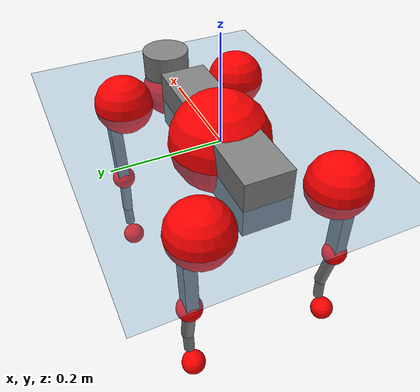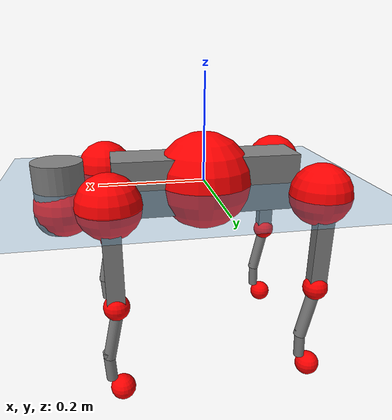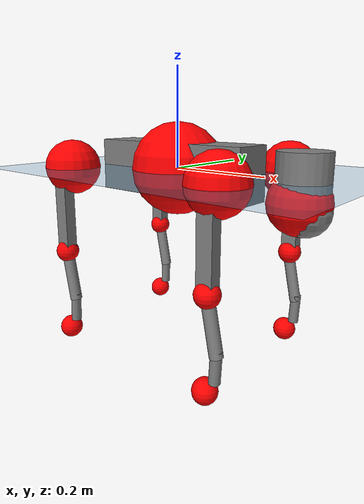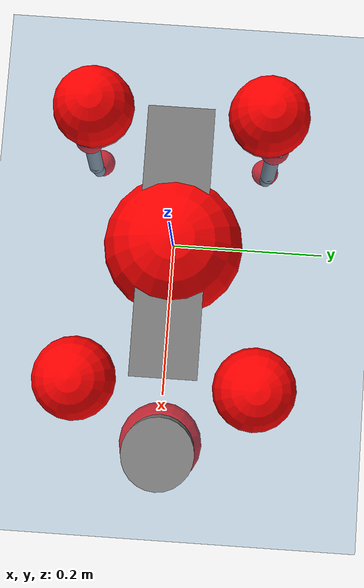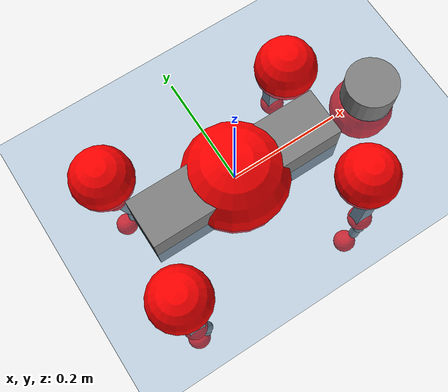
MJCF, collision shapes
<mujoco model="go2">
  <compiler angle="radian" assetdir="assets" balanceinertia="true" inertiafromgeom="false"/>

  <option timestep="0.005" density="1.2" viscosity="2e-05"/>

  <size nkey="1"/>

  <visual>
    <quality shadowsize="8192"/>
    <map shadowclip="0.5"/>
  </visual>

  <default>
    <default class="/">
      <geom contype="0" conaffinity="0" group="1" solref="-1000 -80"/>
      <site size="0.01 0.005 0.005" group="5"/>
      <general forcelimited="true" biastype="affine" gainprm="20" biasprm="0 -20 -0.5"/>
      <default class="go2">
        <joint armature="0.01" damping="0.01" frictionloss="0.2"/>
        <geom condim="1" margin="0.001"/>
        <default class="visual">
          <geom type="mesh" group="2"/>
        </default>
        <default class="collision">
          <geom group="3"/>
          <default class="foot">
            <geom size="0.022 0 0" condim="6" priority="1" friction="0.8 0.02 0.01" solimp="0.015 1 0.022"/>
          </default>
        </default>
        <default class="reward_collision_sphere">
          <geom group="5" rgba="1 0 0 1"/>
        </default>
      </default>
    </default>
  </default>

  <asset>
    <texture type="skybox" colorspace="auto" name="//unnamed_texture_0" builtin="gradient" rgb1="0.95 0.95 0.95" rgb2="0.95 0.95 0.95" width="100" height="600"/>
    <texture type="2d" colorspace="auto" name="texplane" builtin="checker" rgb1="0.345 0.575 0.748" rgb2="0.345 0.575 0.748" markrgb="1 1 1" width="512" height="512"/>
    <material name="MatPlane" class="/" texture="texplane" texuniform="true" texrepeat="2 2" specular="0.9"/>
    <material name="metal" class="/" rgba="0.9 0.95 0.95 1"/>
    <material name="black" class="/" rgba="0 0 0 1"/>
    <material name="white" class="/"/>
    <material name="gray" class="/" rgba="0.671705 0.692426 0.77427 1"/>
    <mesh name="base_0" class="/" file="base_0.obj"/>
    <mesh name="base_1" class="/" file="base_1.obj"/>
    <mesh name="base_2" class="/" file="base_2.obj"/>
    <mesh name="base_3" class="/" file="base_3.obj"/>
    <mesh name="base_4" class="/" file="base_4.obj"/>
    <mesh name="hip_0" class="/" file="hip_0.obj"/>
    <mesh name="hip_1" class="/" file="hip_1.obj"/>
    <mesh name="thigh_0" class="/" file="thigh_0.obj"/>
    <mesh name="thigh_1" class="/" file="thigh_1.obj"/>
    <mesh name="thigh_mirror_0" class="/" file="thigh_mirror_0.obj"/>
    <mesh name="thigh_mirror_1" class="/" file="thigh_mirror_1.obj"/>
    <mesh name="calf_0" class="/" file="calf_0.obj"/>
    <mesh name="calf_1" class="/" file="calf_1.obj"/>
    <mesh name="calf_mirror_0" class="/" file="calf_mirror_0.obj"/>
    <mesh name="calf_mirror_1" class="/" file="calf_mirror_1.obj"/>
    <mesh name="foot" class="/" file="foot.obj"/>
  </asset>

  <worldbody>
    <geom name="floor" class="/" size="100 100 0.125" type="plane" group="0" material="MatPlane"/>
    <light name="toplight_shadow" class="/" pos="0 0 5" dir="0.0990148 0.0990148 -0.990148" type="directional" ambient="0.04 0.04 0.04" diffuse="0.55 0.55 0.55" specular="0.12 0.12 0.12"/>
    <light name="toplight_fill" class="/" pos="0 0 5" dir="0.0990148 0.0990148 -0.990148" type="directional" castshadow="false" ambient="0.04 0.04 0.04" diffuse="0.3 0.3 0.3" specular="0.08 0.08 0.08"/>
    <body name="trunk" childclass="go2" pos="0.000448363 5.77178e-05 4.27506e-05" quat="1 9.94111e-05 0.000194302 0.000154325">
      <inertial pos="0.0194543 -0.00114723 -0.00550082" quat="-0.00263926 0.716149 -0.00200518 0.697939" mass="5.60339" diaginertia="0.0843024 0.114393 0.00947366"/>
      <joint name="//unnamed_joint_0" type="free" armature="0" damping="0" frictionloss="0"/>
      <geom name="//unnamed_geom_1" class="visual" material="black" mesh="base_0"/>
      <geom name="//unnamed_geom_2" class="visual" material="black" mesh="base_1"/>
      <geom name="//unnamed_geom_3" class="visual" material="black" mesh="base_2"/>
      <geom name="//unnamed_geom_4" class="visual" material="white" mesh="base_3"/>
      <geom name="//unnamed_geom_5" class="visual" material="gray" mesh="base_4"/>
      <geom name="trunk_1" class="collision" size="0.17609 0.0437651 0.0533606" type="box"/>
      <geom name="trunk_2" class="collision" size="0.0468076 0.0421268" pos="0.27175 0 0.00826326" type="cylinder"/>
      <geom name="trunk_3" class="collision" size="0.0439991" pos="0.279378 0 -0.0495796"/>
      <geom name="//unnamed_geom_9" class="reward_collision_sphere" size="0.0936151"/>
      <geom name="//unnamed_geom_10" class="reward_collision_sphere" size="0.0561691" pos="0.266982 0 -0.0371847"/>
      <site name="imu" pos="-0.0341314 -0.0024665 0.0408793" size="0.00936151"/>
      <camera name="track" pos="0 -2.05724 0" quat="0.707107 0.707107 0 0" mode="trackcom"/>
      <camera name="ego_camera" pos="0.297495 0 0.0371847" quat="-0.5 -0.5 0.5 0.5"/>
      <body name="FL_hip" pos="0.184656 0.0487347 0.00131236" quat="1 -0.000198821 0.000226642 -0.000146262">
        <inertial pos="-0.00375068 0.00298526 -0.00055865" quat="0.497689 0.501021 0.503356 0.497911" mass="0.547661" diaginertia="0.000684694 0.000689308 0.000183458"/>
        <joint name="FL_hip_joint" pos="0 0 0" axis="0.999966 0.00421439 -0.00711315" stiffness="0.000965243" range="-1.05705 1.03427" armature="0.010162" damping="0.00124946" frictionloss="0.185047"/>
        <geom name="//unnamed_geom_11" class="visual" material="metal" mesh="hip_0"/>
        <geom name="//unnamed_geom_12" class="visual" material="gray" mesh="hip_1"/>
        <geom name="//unnamed_geom_13" class="collision" size="0.043063 0.018723" pos="0 0.0822896 0" quat="0.707107 0.707107 0 0" type="cylinder"/>
        <geom name="//unnamed_geom_14" class="reward_collision_sphere" size="0.0561691" pos="0 0.0720034 0"/>
        <body name="FL_thigh" pos="-0.000739668 0.0986618 0.00170612" quat="1 0.000183855 -7.91832e-05 -6.64567e-05">
          <inertial pos="-0.00482572 -0.0226438 -0.0256126" quat="0.828714 0.086489 -0.0217022 0.552524" mass="0.941734" diaginertia="0.00461855 0.00673856 0.000338304"/>
          <joint name="FL_thigh_joint" pos="0 0 0" axis="0.00048989 0.999999 -0.0012006" range="-1.5623 3.48331" armature="0.00950314" damping="0.0129956" frictionloss="0.176049"/>
          <geom name="//unnamed_geom_15" class="visual" material="metal" mesh="thigh_0"/>
          <geom name="//unnamed_geom_16" class="visual" material="gray" mesh="thigh_1"/>
          <geom name="//unnamed_geom_17" class="collision" size="0.0997001 0.0114679 0.0159146" pos="0 0 -0.0880037" quat="0.707107 0 0.707107 0" type="box"/>
          <body name="FL_calf" pos="-0.000182524 -0.00162348 -0.178061" quat="1 -6.85576e-05 -0.000248166 -1.9891e-06">
            <inertial pos="0.0064386 -0.000758902 -0.115744" quat="0.710706 0.00353066 -0.0045452 0.703466" mass="0.200268" diaginertia="0.00118436 0.00168152 2.06884e-05"/>
            <joint name="FL_calf_joint" pos="0 0 0" axis="0.00317991 0.999952 -0.00921939" stiffness="0.00111009" range="-2.72 -0.856632" armature="0.00893336" damping="0" frictionloss="0.18382"/>
            <geom name="//unnamed_geom_18" class="visual" material="gray" mesh="calf_0"/>
            <geom name="//unnamed_geom_19" class="visual" material="black" mesh="calf_1"/>
            <geom name="FL_calf0" class="collision" size="0.0112338 0.0561691" pos="0.00762807 0 -0.0495796" quat="0.994493 0 -0.104807 0" type="cylinder"/>
            <geom name="//unnamed_geom_21" class="collision" size="0.0102977 0.0304249" pos="0.0190702 0 -0.122296" quat="0.999688 0 0.0249974 0" type="cylinder"/>
            <geom name="//unnamed_geom_22" class="visual" pos="0 0 -0.176007" quat="1 0 0 0" material="black" mesh="foot"/>
            <geom name="FL_foot" class="foot" size="0.0181265" pos="-0.00190702 0 -0.176007"/>
            <geom name="//unnamed_geom_24" class="reward_collision_sphere" size="0.0234038"/>
            <geom name="//unnamed_geom_25" class="reward_collision_sphere" size="0.0234038" pos="-0.00190702 0 -0.176007"/>
            <site name="FL_foot" class="foot" pos="-0.00190702 0 -0.176007" size="0.00936151"/>
          </body>
        </body>
      </body>
      <body name="FR_hip" pos="0.18534 -0.0474769 0.000711768" quat="1 4.21684e-06 -6.14897e-05 5.45706e-07">
        <inertial pos="-0.00385296 -0.00244784 8.76915e-05" quat="0.498814 0.504505 0.499266 0.497387" mass="0.555504" diaginertia="0.000701546 0.000676725 0.000183698"/>
        <joint name="FR_hip_joint" pos="0 0 0" axis="0.999985 0.00524125 -0.00126916" stiffness="0.0018172" range="-1.07585 1.05918" armature="0.00884469" damping="0.0190817" frictionloss="0.175792"/>
        <geom name="//unnamed_geom_26" class="visual" pos="0 1.7623e-09 7.55887e-08" quat="4.63268e-05 1 0 0" material="metal" mesh="hip_0"/>
        <geom name="//unnamed_geom_27" class="visual" pos="0 2.8569e-09 -1.8696e-07" quat="4.63268e-05 1 0 0" material="gray" mesh="hip_1"/>
        <geom name="//unnamed_geom_28" class="collision" size="0.043063 0.018723" pos="0 -0.0822896 0" quat="0.707107 0.707107 0 0" type="cylinder"/>
        <geom name="//unnamed_geom_29" class="reward_collision_sphere" size="0.0561691" pos="0 -0.0720034 0"/>
        <body name="FR_thigh" pos="0.00140442 -0.0965296 0.000348015" quat="1 2.90612e-05 -8.16591e-05 0.000216183">
          <inertial pos="-0.00362504 0.0235643 -0.0273941" quat="0.549618 -0.0233213 0.0816066 0.831094" mass="0.921716" diaginertia="0.00469437 0.00666254 0.000332864"/>
          <joint name="FR_thigh_joint" pos="0 0 0" axis="0.00513946 -0.999985 -0.00203068" stiffness="4.8433e-06" range="-3.45353 1.56708" armature="0.00940061" damping="0.00410052" frictionloss="0.207874"/>
          <geom name="//unnamed_geom_30" class="visual" material="metal" mesh="thigh_mirror_0"/>
          <geom name="//unnamed_geom_31" class="visual" material="gray" mesh="thigh_mirror_1"/>
          <geom name="//unnamed_geom_32" class="collision" size="0.0997001 0.0114679 0.0159146" pos="0 0 -0.0880037" quat="0.707107 0 0.707107 0" type="box"/>
          <body name="FR_calf" pos="0.00112794 -0.00181325 -0.176559" quat="1 2.69808e-06 1.69351e-05 -5.09389e-05">
            <inertial pos="0.00583207 0.000761964 -0.115641" quat="0.704763 -0.00653264 -0.000126986 0.709412" mass="0.19734" diaginertia="0.00114936 0.00167546 2.05312e-05"/>
            <joint name="FR_calf_joint" pos="0 0 0" axis="-0.00080094 -0.999999 -0.000749427" stiffness="6.62122e-05" range="0.848021 2.71868" armature="0.00973186" damping="0.0115699" frictionloss="0.170804"/>
            <geom name="//unnamed_geom_33" class="visual" material="gray" mesh="calf_mirror_0"/>
            <geom name="//unnamed_geom_34" class="visual" material="black" mesh="calf_mirror_1"/>
            <geom name="FR_calf0" class="collision" size="0.01217 0.0561691" pos="0.00953508 0 -0.0495796" quat="0.995004 0 -0.0998334 0" type="cylinder"/>
            <geom name="//unnamed_geom_36" class="collision" size="0.0102977 0.0304249" pos="0.0190702 0 -0.122296" quat="0.999688 0 0.0249974 0" type="cylinder"/>
            <geom name="//unnamed_geom_37" class="visual" pos="0 0 -0.176007" quat="1 0 0 0" material="black" mesh="foot"/>
            <geom name="FR_foot" class="foot" size="0.0201185" pos="-0.00190702 0 -0.176007"/>
            <geom name="//unnamed_geom_39" class="reward_collision_sphere" size="0.0234038"/>
            <geom name="//unnamed_geom_40" class="reward_collision_sphere" size="0.0234038" pos="-0.00190702 0 -0.176007"/>
            <site name="FR_foot" class="foot" pos="-0.00190702 0 -0.176007" size="0.00936151"/>
          </body>
        </body>
      </body>
      <body name="RL_hip" pos="-0.18632 0.0470549 -0.00097383" quat="1 2.61913e-05 5.0752e-05 -4.98627e-05">
        <inertial pos="0.004103 0.00383847 0.000561393" quat="0.506309 0.499632 0.495151 0.498843" mass="0.551631" diaginertia="0.000696046 0.000693471 0.000180021"/>
        <joint name="RL_hip_joint" pos="0 0 0" axis="-0.999817 -0.0190754 0.00107161" stiffness="0.00347111" range="-1.06788 1.00239" armature="0.00869541" damping="0.0102657" frictionloss="0.188644"/>
        <geom name="//unnamed_geom_41" class="visual" pos="-1.10796e-09 0 -2.17186e-07" quat="4.63268e-05 0 1 0" material="metal" mesh="hip_0"/>
        <geom name="//unnamed_geom_42" class="visual" pos="-1.79614e-09 0 -1.92613e-07" quat="4.63268e-05 0 1 0" material="gray" mesh="hip_1"/>
        <geom name="//unnamed_geom_43" class="collision" size="0.043063 0.018723" pos="0 0.0822896 0" quat="0.707107 0.707107 0 0" type="cylinder"/>
        <geom name="//unnamed_geom_44" class="reward_collision_sphere" size="0.0561691" pos="0 0.0720034 0"/>
        <body name="RL_thigh" pos="0.000360423 0.0955708 -1.51539e-06" quat="1 -4.55306e-06 8.0511e-06 -2.55493e-06">
          <inertial pos="-0.0035986 -0.0219857 -0.0275379" quat="0.830536 0.0846552 -0.0204281 0.550115" mass="0.944983" diaginertia="0.00468344 0.00676321 0.000335298"/>
          <joint name="RL_thigh_joint" pos="0 0 0" axis="-0.00575024 0.999978 0.00339054" stiffness="0.000210868" range="-0.526936 4.52834" armature="0.00977778" damping="0.00847486" frictionloss="0.178753"/>
          <geom name="//unnamed_geom_45" class="visual" material="metal" mesh="thigh_0"/>
          <geom name="//unnamed_geom_46" class="visual" material="gray" mesh="thigh_1"/>
          <geom name="//unnamed_geom_47" class="collision" size="0.0997001 0.0114679 0.0159146" pos="0 0 -0.0880037" quat="0.707107 0 0.707107 0" type="box"/>
          <body name="RL_calf" pos="0.000724113 0.000314324 -0.175111" quat="1 0.000533764 0.000192955 7.95376e-05">
            <inertial pos="0.0060093 -0.000395015 -0.116912" quat="0.703489 0.000933411 -0.000959373 0.710705" mass="0.198306" diaginertia="0.00118001 0.00170001 2.00071e-05"/>
            <joint name="RL_calf_joint" pos="0 0 0" axis="0.0125178 0.99992 -0.00182177" stiffness="0.00244202" range="-2.72721 -0.835552" armature="0.00918602" damping="0.00374215" frictionloss="0.184953"/>
            <geom name="//unnamed_geom_48" class="visual" material="gray" mesh="calf_0"/>
            <geom name="//unnamed_geom_49" class="visual" material="black" mesh="calf_1"/>
            <geom name="RL_calf0" class="collision" size="0.01217 0.0561691" pos="0.00953508 0 -0.0495796" quat="0.995004 0 -0.0998334 0" type="cylinder"/>
            <geom name="//unnamed_geom_51" class="collision" size="0.0102977 0.0304249" pos="0.0190702 0 -0.122296" quat="0.999688 0 0.0249974 0" type="cylinder"/>
            <geom name="//unnamed_geom_52" class="visual" pos="0 0 -0.176007" quat="1 0 0 0" material="black" mesh="foot"/>
            <geom name="RL_foot" class="foot" size="0.0186347" pos="-0.00190702 0 -0.176007"/>
            <geom name="//unnamed_geom_54" class="reward_collision_sphere" size="0.0234038"/>
            <geom name="//unnamed_geom_55" class="reward_collision_sphere" size="0.0234038" pos="-0.00190702 0 -0.176007"/>
            <site name="RL_foot" class="foot" pos="-0.00190702 0 -0.176007" size="0.00936151"/>
          </body>
        </body>
      </body>
      <body name="RR_hip" pos="-0.183876 -0.0502013 -0.000814008" quat="1 3.02479e-06 -0.000157445 0.000256533">
        <inertial pos="0.00355389 -0.00159457 0.00101368" quat="0.501108 0.49537 0.49853 0.504943" mass="0.562475" diaginertia="0.000705758 0.000694098 0.00018282"/>
        <joint name="RR_hip_joint" pos="0 0 0" axis="-1 0.00021085 -0.000212081" stiffness="0.00023576" range="-1.06339 1.08548" armature="0.00916308" damping="0.0026919" frictionloss="0.189248"/>
        <geom name="//unnamed_geom_56" class="visual" pos="1.11056e-09 1.7623e-09 -2.92775e-07" quat="2.14617e-09 4.63268e-05 4.63268e-05 -1" material="metal" mesh="hip_0"/>
        <geom name="//unnamed_geom_57" class="visual" pos="1.7897e-09 2.8569e-09 -5.65297e-09" quat="2.14617e-09 4.63268e-05 4.63268e-05 -1" material="gray" mesh="hip_1"/>
        <geom name="//unnamed_geom_58" class="collision" size="0.043063 0.018723" pos="0 -0.0822896 0" quat="0.707107 0.707107 0 0" type="cylinder"/>
        <geom name="//unnamed_geom_59" class="reward_collision_sphere" size="0.0561691" pos="0 -0.0720034 0"/>
        <body name="RR_thigh" pos="0.000837862 -0.0979663 0.000487354" quat="1 -1.38537e-05 -3.12593e-05 -5.65278e-05">
          <inertial pos="-0.00342939 0.0230987 -0.0268541" quat="0.551618 -0.0199081 0.0844292 0.829574" mass="0.899563" diaginertia="0.00451145 0.00653275 0.000329413"/>
          <joint name="RR_thigh_joint" pos="0 0 0" axis="-0.00858572 -0.99994 0.00684821" stiffness="1.49155e-05" range="-4.54 0.528192" armature="0.00982866" damping="0.0216584" frictionloss="0.188853"/>
          <geom name="//unnamed_geom_60" class="visual" material="metal" mesh="thigh_mirror_0"/>
          <geom name="//unnamed_geom_61" class="visual" material="gray" mesh="thigh_mirror_1"/>
          <geom name="//unnamed_geom_62" class="collision" size="0.0997001 0.0114679 0.0159146" pos="0 0 -0.0880037" quat="0.707107 0 0.707107 0" type="box"/>
          <body name="RR_calf" pos="-0.000757555 -6.33856e-05 -0.177619" quat="1 0.000125457 -0.000509633 3.70944e-05">
            <inertial pos="0.00683741 0.000627918 -0.116994" quat="0.704361 -0.00196888 -0.00189883 0.709837" mass="0.200224" diaginertia="0.00119008 0.00170926 2.05205e-05"/>
            <joint name="RR_calf_joint" pos="0 0 0" axis="-0.00153027 -0.999992 -0.00371244" range="0.830201 2.73914" armature="0.00854111" damping="0.00381444" frictionloss="0.187746"/>
            <geom name="//unnamed_geom_63" class="visual" material="gray" mesh="calf_mirror_0"/>
            <geom name="//unnamed_geom_64" class="visual" material="black" mesh="calf_mirror_1"/>
            <geom name="RR_calf0" class="collision" size="0.01217 0.0561691" pos="0.00953508 0 -0.0495796" quat="0.995004 0 -0.0998334 0" type="cylinder"/>
            <geom name="//unnamed_geom_66" class="collision" size="0.0102977 0.0304249" pos="0.0190702 0 -0.122296" quat="0.999688 0 0.0249974 0" type="cylinder"/>
            <geom name="//unnamed_geom_67" class="visual" pos="0 0 -0.176007" quat="1 0 0 0" material="black" mesh="foot"/>
            <geom name="RR_foot" class="foot" size="0.0218433" pos="-0.00190702 0 -0.176007"/>
            <geom name="//unnamed_geom_69" class="reward_collision_sphere" size="0.0234038"/>
            <geom name="//unnamed_geom_70" class="reward_collision_sphere" size="0.0234038" pos="-0.00190702 0 -0.176007"/>
            <site name="RR_foot" class="foot" pos="-0.00190702 0 -0.176007" size="0.00936151"/>
          </body>
        </body>
      </body>
    </body>
  </worldbody>

  <contact>
    <pair class="/" geom1="floor" geom2="FL_foot" name="//unnamed_contact_0"/>
    <pair class="/" geom1="floor" geom2="FR_foot" name="//unnamed_contact_1"/>
    <pair class="/" geom1="floor" geom2="RL_foot" name="//unnamed_contact_2"/>
    <pair class="/" geom1="floor" geom2="RR_foot" name="//unnamed_contact_3"/>
  </contact>

  <actuator>
    <general name="FL_hip" class="/" joint="FL_hip_joint" forcerange="-21.8504 21.8504" gainprm="18.7375" biasprm="0 -18.7375 -0.477222"/>
    <general name="FL_thigh" class="/" joint="FL_thigh_joint" forcerange="-22.747 22.747" gainprm="18.7375" biasprm="0 -18.7375 -0.477222"/>
    <general name="FL_calf" class="/" joint="FL_calf_joint" forcerange="-42.8539 42.8539" gainprm="18.7375" biasprm="0 -18.7375 -0.477222"/>
    <general name="FR_hip" class="/" joint="FR_hip_joint" forcerange="-22.5331 22.5331" gainprm="18.7375" biasprm="0 -18.7375 -0.477222"/>
    <general name="FR_thigh" class="/" joint="FR_thigh_joint" forcerange="-21.3373 21.3373" gainprm="18.7375" biasprm="0 -18.7375 -0.477222"/>
    <general name="FR_calf" class="/" joint="FR_calf_joint" forcerange="-40.5623 40.5623" gainprm="18.7375" biasprm="0 -18.7375 -0.477222"/>
    <general name="RL_hip" class="/" joint="RL_hip_joint" forcerange="-22.168 22.168" gainprm="18.7375" biasprm="0 -18.7375 -0.477222"/>
    <general name="RL_thigh" class="/" joint="RL_thigh_joint" forcerange="-21.2103 21.2103" gainprm="18.7375" biasprm="0 -18.7375 -0.477222"/>
    <general name="RL_calf" class="/" joint="RL_calf_joint" forcerange="-42.7525 42.7525" gainprm="18.7375" biasprm="0 -18.7375 -0.477222"/>
    <general name="RR_hip" class="/" joint="RR_hip_joint" forcerange="-22.9316 22.9316" gainprm="18.7375" biasprm="0 -18.7375 -0.477222"/>
    <general name="RR_thigh" class="/" joint="RR_thigh_joint" forcerange="-20.7189 20.7189" gainprm="18.7375" biasprm="0 -18.7375 -0.477222"/>
    <general name="RR_calf" class="/" joint="RR_calf_joint" forcerange="-44.3397 44.3397" gainprm="18.7375" biasprm="0 -18.7375 -0.477222"/>
  </actuator>

  <sensor>
    <gyro site="imu" name="imu_angular_velocity"/>
    <velocimeter site="imu" name="imu_linear_velocity"/>
    <framelinvel objtype="site" objname="FL_foot" name="FL_foot_global_linear_velocity"/>
    <framelinvel objtype="site" objname="FR_foot" name="FR_foot_global_linear_velocity"/>
    <framelinvel objtype="site" objname="RL_foot" name="RL_foot_global_linear_velocity"/>
    <framelinvel objtype="site" objname="RR_foot" name="RR_foot_global_linear_velocity"/>
  </sensor>

  <keyframe>
    <key name="home" qpos="0 0 0.325 1 0 0 0 0.1 0.8 -1.5 -0.1 -0.8 1.5 -0.1 0.8 -1.5 0.1 -0.8 1.5"/>
  </keyframe>
</mujoco>
